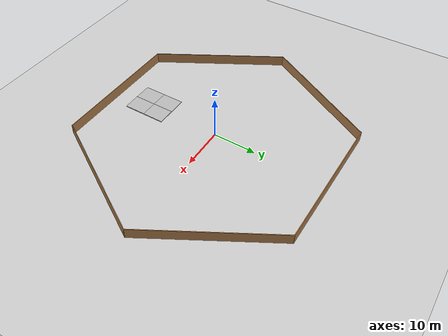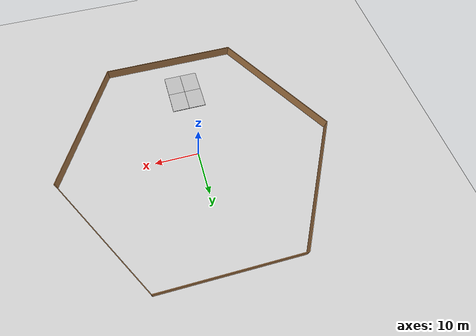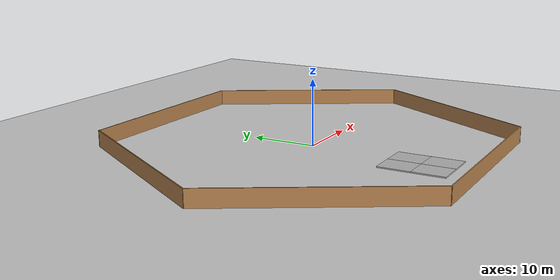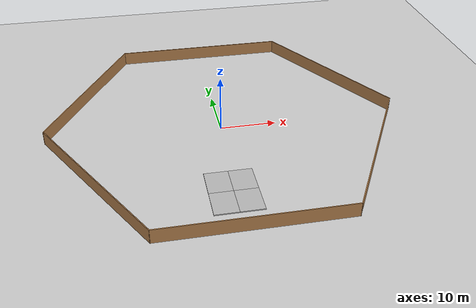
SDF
<sdf version="1.6">
 <world name="default">
  <light name="sun" type="directional">
   <pose>0 0 10 0 -0 0</pose>
   <diffuse>0.8 0.8 0.8 1</diffuse>
   <specular>0.2 0.2 0.2 1</specular>
   <attenuation>
    <range>1000</range>
    <constant>0.9</constant>
    <linear>0.01</linear>
    <quadratic>0.001</quadratic>
   </attenuation>
   <direction>-0.5 0.1 -0.9</direction>
  </light>
  <model name="ground_plane">
   <static>1</static>
   <link name="link">
    <collision name="collision">
     <geometry><plane><normal>0 0 1</normal><size>100 100</size></plane></geometry>
     <surface><friction><ode><mu>100</mu><mu2>50</mu2></ode></friction></surface>
    </collision>
    <visual name="visual">
     <cast_shadows>0</cast_shadows>
     <geometry><plane><normal>0 0 1</normal><size>100 100</size></plane></geometry>
     <material>
      <script><uri>file://media/materials/scripts/gazebo.material</uri><name>Gazebo/Grey</name></script>
     </material>
    </visual>
   </link>
  </model>
  <gravity>0 0 -9.8</gravity>
  <magnetic_field>6e-06 2.3e-05 -4.2e-05</magnetic_field>
  <atmosphere type="adiabatic"/>
  <physics name="default_physics" default="0" type="ode">
   <max_step_size>0.001</max_step_size>
   <real_time_factor>1</real_time_factor>
   <real_time_update_rate>1000</real_time_update_rate>
  </physics>
  <scene><ambient>0.4 0.4 0.4 1</ambient><background>0.7 0.7 0.7 1</background><shadows>1</shadows></scene>
  <audio><device>default</device></audio>
  <spherical_coordinates>
   <surface_model>EARTH_WGS84</surface_model>
   <latitude_deg>0</latitude_deg>
   <longitude_deg>0</longitude_deg>
   <elevation>0</elevation>
   <heading_deg>0</heading_deg>
  </spherical_coordinates>
  <model name="fishbot">
   <pose>0.636053 0.4769 0 0 -0 0</pose>
   <link name="Wall_1">
    <collision name="Wall_1_Collision">
     <geometry><box><size>31.75 0.15 2.5</size></box></geometry>
     <pose>0 0 1.25 0 -0 0</pose>
    </collision>
    <visual name="Wall_1_Visual">
     <pose>0 0 1.25 0 -0 0</pose>
     <geometry><box><size>31.75 0.15 2.5</size></box></geometry>
     <material>
      <script><uri>file://media/materials/scripts/gazebo.material</uri><name>Gazebo/Wood</name></script>
      <ambient>1 1 1 1</ambient>
     </material>
     <meta><layer>0</layer></meta>
    </visual>
    <pose>-0.187499 26.9334 0 0 -0 0</pose>
   </link>
   <link name="Wall_2">
    <collision name="Wall_2_Collision">
     <geometry><box><size>31.25 0.15 2.5</size></box></geometry>
     <pose>0 0 1.25 0 -0 0</pose>
    </collision>
    <visual name="Wall_2_Visual">
     <pose>0 0 1.25 0 -0 0</pose>
     <geometry><box><size>31.25 0.15 2.5</size></box></geometry>
     <material>
      <script><uri>file://media/materials/scripts/gazebo.material</uri><name>Gazebo/Wood</name></script>
      <ambient>1 1 1 1</ambient>
     </material>
     <meta><layer>0</layer></meta>
    </visual>
    <pose>23.3875 13.4667 0 0 -0 -1.0472</pose>
   </link>
   <link name="Wall_3">
    <collision name="Wall_3_Collision">
     <geometry><box><size>31.25 0.15 2.5</size></box></geometry>
     <pose>0 0 1.25 0 -0 0</pose>
    </collision>
    <visual name="Wall_3_Visual">
     <pose>0 0 1.25 0 -0 0</pose>
     <geometry><box><size>31.25 0.15 2.5</size></box></geometry>
     <material>
      <script><uri>file://media/materials/scripts/gazebo.material</uri><name>Gazebo/Wood</name></script>
      <ambient>1 1 1 1</ambient>
     </material>
     <meta><layer>0</layer></meta>
    </visual>
    <pose>23.3875 -13.4667 0 0 -0 -2.0944</pose>
   </link>
   <link name="Wall_4">
    <collision name="Wall_4_Collision">
     <geometry><box><size>31.25 0.15 2.5</size></box></geometry>
     <pose>0 0 1.25 0 -0 0</pose>
    </collision>
    <visual name="Wall_4_Visual">
     <pose>0 0 1.25 0 -0 0</pose>
     <geometry><box><size>31.25 0.15 2.5</size></box></geometry>
     <material>
      <script><uri>file://media/materials/scripts/gazebo.material</uri><name>Gazebo/Wood</name></script>
      <ambient>1 1 1 1</ambient>
     </material>
     <meta><layer>0</layer></meta>
    </visual>
    <pose>0.062501 -26.9334 0 0 -0 3.14159</pose>
   </link>
   <link name="Wall_5">
    <collision name="Wall_5_Collision">
     <geometry><box><size>31.5 0.15 2.5</size></box></geometry>
     <pose>0 0 1.25 0 -0 0</pose>
    </collision>
    <visual name="Wall_5_Visual">
     <pose>0 0 1.25 0 -0 0</pose>
     <geometry><box><size>31.5 0.15 2.5</size></box></geometry>
     <material>
      <script><uri>file://media/materials/scripts/gazebo.material</uri><name>Gazebo/Wood</name></script>
      <ambient>1 1 1 1</ambient>
     </material>
     <meta><layer>0</layer></meta>
    </visual>
    <pose>-23.325 -13.3584 0 0 -0 2.0944</pose>
   </link>
   <link name="Wall_6">
    <collision name="Wall_6_Collision">
     <geometry><box><size>30.8758 0.15 2.5</size></box></geometry>
     <pose>0 0 1.25 0 -0 0</pose>
    </collision>
    <visual name="Wall_6_Visual">
     <pose>0 0 1.25 0 -0 0</pose>
     <geometry><box><size>30.8758 0.15 2.5</size></box></geometry>
     <material>
      <script><uri>file://media/materials/scripts/gazebo.material</uri><name>Gazebo/Wood</name></script>
      <ambient>1 1 1 1</ambient>
     </material>
     <meta><layer>0</layer></meta>
    </visual>
    <pose>-23.575 13.5749 0 0 -0 1.05424</pose>
   </link>
   <static>1</static>
  </model>
  <model name="mud_box">
   <static>1</static>
   <link name="link">
    <collision name="collision"><geometry><box><size>8 10 0.2</size></box></geometry></collision>
    <visual name="visual_1">
     <pose>-2 2.5 0 0 -0 0</pose>
     <cast_shadows>0</cast_shadows>
     <geometry><box><size>4 5 0.2</size></box></geometry>
     <material>
      <script>
       <uri>model://mud_box/materials/scripts</uri>
       <uri>model://mud_box/materials/textures</uri>
       <name>vrc/mud</name>
      </script>
     </material>
    </visual>
    <visual name="visual_2">
     <pose>2 2.5 0 0 -0 0</pose>
     <cast_shadows>0</cast_shadows>
     <geometry><box><size>4 5 0.2</size></box></geometry>
     <material>
      <script>
       <uri>model://mud_box/materials/scripts</uri>
       <uri>model://mud_box/materials/textures</uri>
       <name>vrc/mud</name>
      </script>
     </material>
    </visual>
    <visual name="visual_3">
     <pose>2 -2.5 0 0 -0 0</pose>
     <cast_shadows>0</cast_shadows>
     <geometry><box><size>4 5 0.2</size></box></geometry>
     <material>
      <script>
       <uri>model://mud_box/materials/scripts</uri>
       <uri>model://mud_box/materials/textures</uri>
       <name>vrc/mud</name>
      </script>
     </material>
    </visual>
    <visual name="visual_4">
     <pose>-2 -2.5 0 0 -0 0</pose>
     <cast_shadows>0</cast_shadows>
     <geometry><box><size>4 5 0.2</size></box></geometry>
     <material>
      <script>
       <uri>model://mud_box/materials/scripts</uri>
       <uri>model://mud_box/materials/textures</uri>
       <name>vrc/mud</name>
      </script>
     </material>
    </visual>
   </link>
   <pose>-1.10535 -17.4763 0 0 -0 0</pose>
  </model>
 </world>
</sdf>
